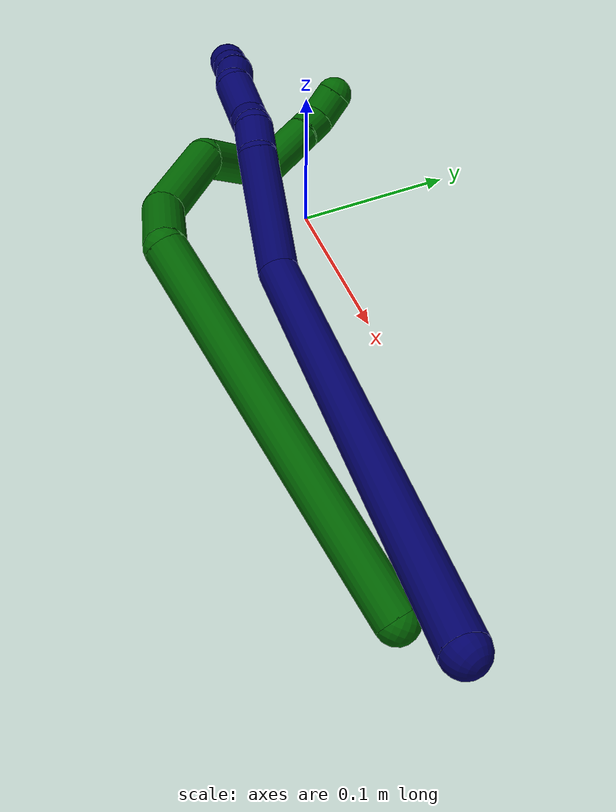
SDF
<sdf version="1.7">
 <world name="default">
  <model name="photoneo_s_sensor">
   <static>1</static>
   <pose>0 0 2 1.57079 1.57079 3.14159</pose>
   <link name="link">
    <inertial><mass>0.1</mass></inertial>
    <sensor name="sensor" type="depth">
     <update_rate>30</update_rate>
     <camera>
      <horizontal_fov>1.22</horizontal_fov>
      <image><width>1920</width><height>1200</height><format>B8G8R8</format></image>
      <clip><near>0.1</near><far>4</far></clip>
      <depth_camera><output>points</output></depth_camera>
     </camera>
     <plugin name="camera_plugin" filename="libgazebo_ros_depth_camera.so">
      <baseline>0.2</baseline>
      <alwaysOn>1</alwaysOn>
      <updateRate>0.0</updateRate>
      <cameraName>camera_ir</cameraName>
      <imageTopicName>/camera/color/image_raw</imageTopicName>
      <cameraInfoTopicName>/camera/color/camera_info</cameraInfoTopicName>
      <depthImageTopicName>/camera/depth/image_raw</depthImageTopicName>
      <depthImageCameraInfoTopicName>/camera/depth/camera_info</depthImageCameraInfoTopicName>
      <pointCloudTopicName>/camera/depth/points</pointCloudTopicName>
      <frameName>fr_optical</frameName>
      <pointCloudCutoff>0.1</pointCloudCutoff>
      <pointCloudCutoffMax>2.0</pointCloudCutoffMax>
      <distortionK1>0</distortionK1>
      <distortionK2>0</distortionK2>
      <distortionK3>0</distortionK3>
      <distortionT1>0</distortionT1>
      <distortionT2>0</distortionT2>
      <CxPrime>0</CxPrime>
      <Cx>0</Cx>
      <Cy>0</Cy>
      <focalLength>0</focalLength>
      <hackBaseline>0</hackBaseline>
     </plugin>
    </sensor>
   </link>
  </model>
  <model name="bin">
   <static>1</static>
   <link name="bottom">
    <collision name="collision-bottom">
     <pose>0 0 -0.01 0 -0 0</pose>
     <geometry><box><size>0.8 0.6 0.02</size></box></geometry>
     <surface>
      <friction><ode><mu>100</mu><mu2>100</mu2></ode></friction>
      <contact><collide_bitmask>65535</collide_bitmask></contact>
     </surface>
    </collision>
   </link>
   <link name="west_wall">
    <collision name="collision-west_wall">
     <pose>-0.41 0 0.1 0 -0 0</pose>
     <geometry><box><size>0.02 0.6 0.2</size></box></geometry>
     <surface>
      <friction><ode><mu>100</mu><mu2>100</mu2></ode></friction>
      <contact><collide_bitmask>65535</collide_bitmask></contact>
     </surface>
    </collision>
   </link>
   <link name="east_wall">
    <collision name="collision-east_wall">
     <pose>0.41 0 0.1 0 -0 0</pose>
     <geometry><box><size>0.02 0.6 0.2</size></box></geometry>
     <surface>
      <friction><ode><mu>100</mu><mu2>100</mu2></ode></friction>
      <contact><collide_bitmask>65535</collide_bitmask></contact>
     </surface>
    </collision>
   </link>
   <link name="south_wall">
    <collision name="collision-south_wall">
     <pose>0 -0.31 0.1 0 -0 0</pose>
     <geometry><box><size>0.8 0.02 0.2</size></box></geometry>
     <surface>
      <friction><ode><mu>100</mu><mu2>100</mu2></ode></friction>
      <contact><collide_bitmask>65535</collide_bitmask></contact>
     </surface>
    </collision>
   </link>
   <link name="north_wall">
    <collision name="collision-north_wall">
     <pose>0 0.31 0.1 0 -0 0</pose>
     <geometry><box><size>0.8 0.02 0.2</size></box></geometry>
     <surface>
      <friction><ode><mu>100</mu><mu2>100</mu2></ode></friction>
      <contact><collide_bitmask>65535</collide_bitmask></contact>
     </surface>
    </collision>
   </link>
  </model>
  <model name="6">
   <static>0</static>
   <link name="6">
    <collision name="collision-cylinder-e_1_1_4">
     <pose>-0.072007 -0.069766 0.060247 0.858481 -0.663152 -0.312591</pose>
     <geometry><cylinder><radius>0.0125</radius><length>0.233941</length></cylinder></geometry>
     <surface>
      <friction><ode><mu>1.16</mu><mu2>1.16</mu2><slip1>0</slip1><slip2>0</slip2></ode></friction>
      <contact><ode><kp>1e+06</kp><kd>1</kd><max_vel>0</max_vel><min_depth>0.001</min_depth></ode></contact>
     </surface>
    </collision>
    <visual name="visual-cylinder-e_1_1_4">
     <pose>-0.072007 -0.069766 0.060247 0.858481 -0.663152 -0.312591</pose>
     <geometry><cylinder><radius>0.0125</radius><length>0.233941</length></cylinder></geometry>
     <material><ambient>0 0.392157 0.003922 1</ambient></material>
    </visual>
    <collision name="collision-cylinder-e_2_4_5">
     <pose>-0.166843 -0.137689 0.130057 -0.190392 -1.16757 0.125986</pose>
     <geometry><cylinder><radius>0.0125</radius><length>0.049637</length></cylinder></geometry>
     <surface>
      <friction><ode><mu>1.16</mu><mu2>1.16</mu2><slip1>0</slip1><slip2>0</slip2></ode></friction>
      <contact><ode><kp>1e+06</kp><kd>1</kd><max_vel>0</max_vel><min_depth>0.001</min_depth></ode></contact>
     </surface>
    </collision>
    <visual name="visual-cylinder-e_2_4_5">
     <pose>-0.166843 -0.137689 0.130057 -0.190392 -1.16757 0.125986</pose>
     <geometry><cylinder><radius>0.0125</radius><length>0.049637</length></cylinder></geometry>
     <material><ambient>0 0.392157 0.003922 1</ambient></material>
    </visual>
    <collision name="collision-cylinder-e_3_5_6">
     <pose>-0.208426 -0.124931 0.160308 -0.485455 -0.675835 0.173581</pose>
     <geometry><cylinder><radius>0.0125</radius><length>0.059963</length></cylinder></geometry>
     <surface>
      <friction><ode><mu>1.16</mu><mu2>1.16</mu2><slip1>0</slip1><slip2>0</slip2></ode></friction>
      <contact><ode><kp>1e+06</kp><kd>1</kd><max_vel>0</max_vel><min_depth>0.001</min_depth></ode></contact>
     </surface>
    </collision>
    <visual name="visual-cylinder-e_3_5_6">
     <pose>-0.208426 -0.124931 0.160308 -0.485455 -0.675835 0.173581</pose>
     <geometry><cylinder><radius>0.0125</radius><length>0.059963</length></cylinder></geometry>
     <material><ambient>0 0.392157 0.003922 1</ambient></material>
    </visual>
    <collision name="collision-cylinder-e_4_6_7">
     <pose>-0.248306 -0.086424 0.18805 -1.32052 -0.638185 0.502268</pose>
     <geometry><cylinder><radius>0.0125</radius><length>0.070919</length></cylinder></geometry>
     <surface>
      <friction><ode><mu>1.16</mu><mu2>1.16</mu2><slip1>0</slip1><slip2>0</slip2></ode></friction>
      <contact><ode><kp>1e+06</kp><kd>1</kd><max_vel>0</max_vel><min_depth>0.001</min_depth></ode></contact>
     </surface>
    </collision>
    <visual name="visual-cylinder-e_4_6_7">
     <pose>-0.248306 -0.086424 0.18805 -1.32052 -0.638185 0.502268</pose>
     <geometry><cylinder><radius>0.0125</radius><length>0.070919</length></cylinder></geometry>
     <material><ambient>0 0.392157 0.003922 1</ambient></material>
    </visual>
    <collision name="collision-cylinder-e_5_7_8">
     <pose>-0.277113 -0.048688 0.21274 -0.5219 -0.361077 0.097406</pose>
     <geometry><cylinder><radius>0.0125</radius><length>0.043494</length></cylinder></geometry>
     <surface>
      <friction><ode><mu>1.16</mu><mu2>1.16</mu2><slip1>0</slip1><slip2>0</slip2></ode></friction>
      <contact><ode><kp>1e+06</kp><kd>1</kd><max_vel>0</max_vel><min_depth>0.001</min_depth></ode></contact>
     </surface>
    </collision>
    <visual name="visual-cylinder-e_5_7_8">
     <pose>-0.277113 -0.048688 0.21274 -0.5219 -0.361077 0.097406</pose>
     <geometry><cylinder><radius>0.0125</radius><length>0.043494</length></cylinder></geometry>
     <material><ambient>0 0.392157 0.003922 1</ambient></material>
    </visual>
    <collision name="collision-cylinder-e_6_8_9">
     <pose>-0.289659 -0.033529 0.238174 -0.57175 -0.48308 0.144565</pose>
     <geometry><cylinder><radius>0.0125</radius><length>0.02094</length></cylinder></geometry>
     <surface>
      <friction><ode><mu>1.16</mu><mu2>1.16</mu2><slip1>0</slip1><slip2>0</slip2></ode></friction>
      <contact><ode><kp>1e+06</kp><kd>1</kd><max_vel>0</max_vel><min_depth>0.001</min_depth></ode></contact>
     </surface>
    </collision>
    <visual name="visual-cylinder-e_6_8_9">
     <pose>-0.289659 -0.033529 0.238174 -0.57175 -0.48308 0.144565</pose>
     <geometry><cylinder><radius>0.0125</radius><length>0.02094</length></cylinder></geometry>
     <material><ambient>0 0.392157 0.003922 1</ambient></material>
    </visual>
    <collision name="collision-cylinder-e_7_9_2">
     <pose>-0.29401 -0.026563 0.25633 -0.185919 0.048548 -0.004527</pose>
     <geometry><cylinder><radius>0.0125</radius><length>0.021106</length></cylinder></geometry>
     <surface>
      <friction><ode><mu>1.16</mu><mu2>1.16</mu2><slip1>0</slip1><slip2>0</slip2></ode></friction>
      <contact><ode><kp>1e+06</kp><kd>1</kd><max_vel>0</max_vel><min_depth>0.001</min_depth></ode></contact>
     </surface>
    </collision>
    <visual name="visual-cylinder-e_7_9_2">
     <pose>-0.29401 -0.026563 0.25633 -0.185919 0.048548 -0.004527</pose>
     <geometry><cylinder><radius>0.0125</radius><length>0.021106</length></cylinder></geometry>
     <material><ambient>0 0.392157 0.003922 1</ambient></material>
    </visual>
    <collision name="collision-sphere-2">
     <pose>-0.293498 -0.024615 0.266689 0 -0 0</pose>
     <geometry><sphere><radius>0.0125</radius></sphere></geometry>
     <surface>
      <friction><ode><mu>1.16</mu><mu2>1.16</mu2><slip1>0</slip1><slip2>0</slip2></ode></friction>
      <contact><ode><kp>1e+06</kp><kd>1</kd><max_vel>0</max_vel><min_depth>0.001</min_depth></ode></contact>
     </surface>
    </collision>
    <visual name="visual-sphere-2">
     <pose>-0.293498 -0.024615 0.266689 0 -0 0</pose>
     <geometry><sphere><radius>0.0125</radius></sphere></geometry>
     <material><ambient>0 0.392157 0.003922 1</ambient></material>
    </visual>
    <collision name="collision-sphere-9">
     <pose>-0.294523 -0.028512 0.245971 0 -0 0</pose>
     <geometry><sphere><radius>0.0125</radius></sphere></geometry>
     <surface>
      <friction><ode><mu>1.16</mu><mu2>1.16</mu2><slip1>0</slip1><slip2>0</slip2></ode></friction>
      <contact><ode><kp>1e+06</kp><kd>1</kd><max_vel>0</max_vel><min_depth>0.001</min_depth></ode></contact>
     </surface>
    </collision>
    <visual name="visual-sphere-9">
     <pose>-0.294523 -0.028512 0.245971 0 -0 0</pose>
     <geometry><sphere><radius>0.0125</radius></sphere></geometry>
     <material><ambient>0 0.392157 0.003922 1</ambient></material>
    </visual>
    <collision name="collision-sphere-4">
     <pose>-0.144015 -0.139532 0.120494 0 -0 0</pose>
     <geometry><sphere><radius>0.0125</radius></sphere></geometry>
     <surface>
      <friction><ode><mu>1.16</mu><mu2>1.16</mu2><slip1>0</slip1><slip2>0</slip2></ode></friction>
      <contact><ode><kp>1e+06</kp><kd>1</kd><max_vel>0</max_vel><min_depth>0.001</min_depth></ode></contact>
     </surface>
    </collision>
    <visual name="visual-sphere-4">
     <pose>-0.144015 -0.139532 0.120494 0 -0 0</pose>
     <geometry><sphere><radius>0.0125</radius></sphere></geometry>
     <material><ambient>0 0.392157 0.003922 1</ambient></material>
    </visual>
    <collision name="collision-sphere-1">
     <geometry><sphere><radius>0.0125</radius></sphere></geometry>
     <surface>
      <friction><ode><mu>1.16</mu><mu2>1.16</mu2><slip1>0</slip1><slip2>0</slip2></ode></friction>
      <contact><ode><kp>1e+06</kp><kd>1</kd><max_vel>0</max_vel><min_depth>0.001</min_depth></ode></contact>
     </surface>
    </collision>
    <visual name="visual-sphere-1">
     <geometry><sphere><radius>0.0125</radius></sphere></geometry>
     <material><ambient>0 0.392157 0.003922 1</ambient></material>
    </visual>
    <collision name="collision-sphere-8">
     <pose>-0.284796 -0.038546 0.230377 0 -0 0</pose>
     <geometry><sphere><radius>0.0125</radius></sphere></geometry>
     <surface>
      <friction><ode><mu>1.16</mu><mu2>1.16</mu2><slip1>0</slip1><slip2>0</slip2></ode></friction>
      <contact><ode><kp>1e+06</kp><kd>1</kd><max_vel>0</max_vel><min_depth>0.001</min_depth></ode></contact>
     </surface>
    </collision>
    <visual name="visual-sphere-8">
     <pose>-0.284796 -0.038546 0.230377 0 -0 0</pose>
     <geometry><sphere><radius>0.0125</radius></sphere></geometry>
     <material><ambient>0 0.392157 0.003922 1</ambient></material>
    </visual>
    <collision name="collision-sphere-5">
     <pose>-0.189671 -0.135846 0.139619 0 -0 0</pose>
     <geometry><sphere><radius>0.0125</radius></sphere></geometry>
     <surface>
      <friction><ode><mu>1.16</mu><mu2>1.16</mu2><slip1>0</slip1><slip2>0</slip2></ode></friction>
      <contact><ode><kp>1e+06</kp><kd>1</kd><max_vel>0</max_vel><min_depth>0.001</min_depth></ode></contact>
     </surface>
    </collision>
    <visual name="visual-sphere-5">
     <pose>-0.189671 -0.135846 0.139619 0 -0 0</pose>
     <geometry><sphere><radius>0.0125</radius></sphere></geometry>
     <material><ambient>0 0.392157 0.003922 1</ambient></material>
    </visual>
    <collision name="collision-sphere-6">
     <pose>-0.227181 -0.114017 0.180997 0 -0 0</pose>
     <geometry><sphere><radius>0.0125</radius></sphere></geometry>
     <surface>
      <friction><ode><mu>1.16</mu><mu2>1.16</mu2><slip1>0</slip1><slip2>0</slip2></ode></friction>
      <contact><ode><kp>1e+06</kp><kd>1</kd><max_vel>0</max_vel><min_depth>0.001</min_depth></ode></contact>
     </surface>
    </collision>
    <visual name="visual-sphere-6">
     <pose>-0.227181 -0.114017 0.180997 0 -0 0</pose>
     <geometry><sphere><radius>0.0125</radius></sphere></geometry>
     <material><ambient>0 0.392157 0.003922 1</ambient></material>
    </visual>
    <collision name="collision-sphere-7">
     <pose>-0.26943 -0.058831 0.195104 0 -0 0</pose>
     <geometry><sphere><radius>0.0125</radius></sphere></geometry>
     <surface>
      <friction><ode><mu>1.16</mu><mu2>1.16</mu2><slip1>0</slip1><slip2>0</slip2></ode></friction>
      <contact><ode><kp>1e+06</kp><kd>1</kd><max_vel>0</max_vel><min_depth>0.001</min_depth></ode></contact>
     </surface>
    </collision>
    <visual name="visual-sphere-7">
     <pose>-0.26943 -0.058831 0.195104 0 -0 0</pose>
     <geometry><sphere><radius>0.0125</radius></sphere></geometry>
     <material><ambient>0 0.392157 0.003922 1</ambient></material>
    </visual>
    <inertial>
     <pose>-0.159116 -0.080313 0.126298 0 -0 0</pose>
     <mass>0.5</mass>
     <inertia>
      <ixx>0.000594</ixx>
      <ixy>0</ixy>
      <ixz>0</ixz>
      <iyy>0.000635</iyy>
      <iyz>0</iyz>
      <izz>0.001333</izz>
     </inertia>
    </inertial>
   </link>
   <pose>0.28844 -0.071101 0.012407 -0.739355 -0.601581 0.08893</pose>
  </model>
  <model name="7">
   <static>0</static>
   <link name="7">
    <collision name="collision-cylinder-e_1_1_4">
     <pose>-0.029402 0.025523 -0.135606 -2.95555 -0.20994 1.69214</pose>
     <geometry><cylinder><radius>0.0125</radius><length>0.282169</length></cylinder></geometry>
     <surface>
      <friction><ode><mu>1.16</mu><mu2>1.16</mu2><slip1>0</slip1><slip2>0</slip2></ode></friction>
      <contact><ode><kp>1e+06</kp><kd>1</kd><max_vel>0</max_vel><min_depth>0.001</min_depth></ode></contact>
     </surface>
    </collision>
    <visual name="visual-cylinder-e_1_1_4">
     <pose>-0.029402 0.025523 -0.135606 -2.95555 -0.20994 1.69214</pose>
     <geometry><cylinder><radius>0.0125</radius><length>0.282169</length></cylinder></geometry>
     <material><ambient>0.003922 0 0.403922 1</ambient></material>
    </visual>
    <collision name="collision-cylinder-e_2_4_5">
     <pose>-0.0827 0.041674 -0.301231 2.83895 -0.649749 -2.29133</pose>
     <geometry><cylinder><radius>0.0125</radius><length>0.078995</length></cylinder></geometry>
     <surface>
      <friction><ode><mu>1.16</mu><mu2>1.16</mu2><slip1>0</slip1><slip2>0</slip2></ode></friction>
      <contact><ode><kp>1e+06</kp><kd>1</kd><max_vel>0</max_vel><min_depth>0.001</min_depth></ode></contact>
     </surface>
    </collision>
    <visual name="visual-cylinder-e_2_4_5">
     <pose>-0.0827 0.041674 -0.301231 2.83895 -0.649749 -2.29133</pose>
     <geometry><cylinder><radius>0.0125</radius><length>0.078995</length></cylinder></geometry>
     <material><ambient>0.003922 0 0.403922 1</ambient></material>
    </visual>
    <collision name="collision-cylinder-e_3_5_6">
     <pose>-0.11215 0.03267 -0.340381 -3.10115 -0.546228 2.99743</pose>
     <geometry><cylinder><radius>0.0125</radius><length>0.021387</length></cylinder></geometry>
     <surface>
      <friction><ode><mu>1.16</mu><mu2>1.16</mu2><slip1>0</slip1><slip2>0</slip2></ode></friction>
      <contact><ode><kp>1e+06</kp><kd>1</kd><max_vel>0</max_vel><min_depth>0.001</min_depth></ode></contact>
     </surface>
    </collision>
    <visual name="visual-cylinder-e_3_5_6">
     <pose>-0.11215 0.03267 -0.340381 -3.10115 -0.546228 2.99743</pose>
     <geometry><cylinder><radius>0.0125</radius><length>0.021387</length></cylinder></geometry>
     <material><ambient>0.003922 0 0.403922 1</ambient></material>
    </visual>
    <collision name="collision-cylinder-e_4_6_7">
     <pose>-0.118922 0.038273 -0.359798 -2.67099 -0.105061 0.431795</pose>
     <geometry><cylinder><radius>0.0125</radius><length>0.023211</length></cylinder></geometry>
     <surface>
      <friction><ode><mu>1.16</mu><mu2>1.16</mu2><slip1>0</slip1><slip2>0</slip2></ode></friction>
      <contact><ode><kp>1e+06</kp><kd>1</kd><max_vel>0</max_vel><min_depth>0.001</min_depth></ode></contact>
     </surface>
    </collision>
    <visual name="visual-cylinder-e_4_6_7">
     <pose>-0.118922 0.038273 -0.359798 -2.67099 -0.105061 0.431795</pose>
     <geometry><cylinder><radius>0.0125</radius><length>0.023211</length></cylinder></geometry>
     <material><ambient>0.003922 0 0.403922 1</ambient></material>
    </visual>
    <collision name="collision-cylinder-e_5_7_8">
     <pose>-0.126118 0.04211 -0.385281 3.04999 -0.373403 -2.66553</pose>
     <geometry><cylinder><radius>0.0125</radius><length>0.032779</length></cylinder></geometry>
     <surface>
      <friction><ode><mu>1.16</mu><mu2>1.16</mu2><slip1>0</slip1><slip2>0</slip2></ode></friction>
      <contact><ode><kp>1e+06</kp><kd>1</kd><max_vel>0</max_vel><min_depth>0.001</min_depth></ode></contact>
     </surface>
    </collision>
    <visual name="visual-cylinder-e_5_7_8">
     <pose>-0.126118 0.04211 -0.385281 3.04999 -0.373403 -2.66553</pose>
     <geometry><cylinder><radius>0.0125</radius><length>0.032779</length></cylinder></geometry>
     <material><ambient>0.003922 0 0.403922 1</ambient></material>
    </visual>
    <collision name="collision-cylinder-e_6_8_9">
     <pose>-0.135727 0.044988 -0.409554 -2.70149 -0.347192 1.32983</pose>
     <geometry><cylinder><radius>0.0125</radius><length>0.021339</length></cylinder></geometry>
     <surface>
      <friction><ode><mu>1.16</mu><mu2>1.16</mu2><slip1>0</slip1><slip2>0</slip2></ode></friction>
      <contact><ode><kp>1e+06</kp><kd>1</kd><max_vel>0</max_vel><min_depth>0.001</min_depth></ode></contact>
     </surface>
    </collision>
    <visual name="visual-cylinder-e_6_8_9">
     <pose>-0.135727 0.044988 -0.409554 -2.70149 -0.347192 1.32983</pose>
     <geometry><cylinder><radius>0.0125</radius><length>0.021339</length></cylinder></geometry>
     <material><ambient>0.003922 0 0.403922 1</ambient></material>
    </visual>
    <collision name="collision-cylinder-e_7_9_10">
     <pose>-0.140175 0.053697 -0.427617 -2.68317 -0.081405 0.345623</pose>
     <geometry><cylinder><radius>0.0125</radius><length>0.020108</length></cylinder></geometry>
     <surface>
      <friction><ode><mu>1.16</mu><mu2>1.16</mu2><slip1>0</slip1><slip2>0</slip2></ode></friction>
      <contact><ode><kp>1e+06</kp><kd>1</kd><max_vel>0</max_vel><min_depth>0.001</min_depth></ode></contact>
     </surface>
    </collision>
    <visual name="visual-cylinder-e_7_9_10">
     <pose>-0.140175 0.053697 -0.427617 -2.68317 -0.081405 0.345623</pose>
     <geometry><cylinder><radius>0.0125</radius><length>0.020108</length></cylinder></geometry>
     <material><ambient>0.003922 0 0.403922 1</ambient></material>
    </visual>
    <collision name="collision-cylinder-e_8_10_2">
     <pose>-0.142283 0.062454 -0.445535 -2.69088 -0.129319 0.55054</pose>
     <geometry><cylinder><radius>0.0125</radius><length>0.020012</length></cylinder></geometry>
     <surface>
      <friction><ode><mu>1.16</mu><mu2>1.16</mu2><slip1>0</slip1><slip2>0</slip2></ode></friction>
      <contact><ode><kp>1e+06</kp><kd>1</kd><max_vel>0</max_vel><min_depth>0.001</min_depth></ode></contact>
     </surface>
    </collision>
    <visual name="visual-cylinder-e_8_10_2">
     <pose>-0.142283 0.062454 -0.445535 -2.69088 -0.129319 0.55054</pose>
     <geometry><cylinder><radius>0.0125</radius><length>0.020012</length></cylinder></geometry>
     <material><ambient>0.003922 0 0.403922 1</ambient></material>
    </visual>
    <collision name="collision-sphere-2">
     <pose>-0.143573 0.066776 -0.454467 0 -0 0</pose>
     <geometry><sphere><radius>0.0125</radius></sphere></geometry>
     <surface>
      <friction><ode><mu>1.16</mu><mu2>1.16</mu2><slip1>0</slip1><slip2>0</slip2></ode></friction>
      <contact><ode><kp>1e+06</kp><kd>1</kd><max_vel>0</max_vel><min_depth>0.001</min_depth></ode></contact>
     </surface>
    </collision>
    <visual name="visual-sphere-2">
     <pose>-0.143573 0.066776 -0.454467 0 -0 0</pose>
     <geometry><sphere><radius>0.0125</radius></sphere></geometry>
     <material><ambient>0.003922 0 0.403922 1</ambient></material>
    </visual>
    <collision name="collision-sphere-10">
     <pose>-0.140992 0.058131 -0.436603 0 -0 0</pose>
     <geometry><sphere><radius>0.0125</radius></sphere></geometry>
     <surface>
      <friction><ode><mu>1.16</mu><mu2>1.16</mu2><slip1>0</slip1><slip2>0</slip2></ode></friction>
      <contact><ode><kp>1e+06</kp><kd>1</kd><max_vel>0</max_vel><min_depth>0.001</min_depth></ode></contact>
     </surface>
    </collision>
    <visual name="visual-sphere-10">
     <pose>-0.140992 0.058131 -0.436603 0 -0 0</pose>
     <geometry><sphere><radius>0.0125</radius></sphere></geometry>
     <material><ambient>0.003922 0 0.403922 1</ambient></material>
    </visual>
    <collision name="collision-sphere-9">
     <pose>-0.139357 0.049262 -0.418631 0 -0 0</pose>
     <geometry><sphere><radius>0.0125</radius></sphere></geometry>
     <surface>
      <friction><ode><mu>1.16</mu><mu2>1.16</mu2><slip1>0</slip1><slip2>0</slip2></ode></friction>
      <contact><ode><kp>1e+06</kp><kd>1</kd><max_vel>0</max_vel><min_depth>0.001</min_depth></ode></contact>
     </surface>
    </collision>
    <visual name="visual-sphere-9">
     <pose>-0.139357 0.049262 -0.418631 0 -0 0</pose>
     <geometry><sphere><radius>0.0125</radius></sphere></geometry>
     <material><ambient>0.003922 0 0.403922 1</ambient></material>
    </visual>
    <collision name="collision-sphere-4">
     <pose>-0.058804 0.051047 -0.271211 0 -0 0</pose>
     <geometry><sphere><radius>0.0125</radius></sphere></geometry>
     <surface>
      <friction><ode><mu>1.16</mu><mu2>1.16</mu2><slip1>0</slip1><slip2>0</slip2></ode></friction>
      <contact><ode><kp>1e+06</kp><kd>1</kd><max_vel>0</max_vel><min_depth>0.001</min_depth></ode></contact>
     </surface>
    </collision>
    <visual name="visual-sphere-4">
     <pose>-0.058804 0.051047 -0.271211 0 -0 0</pose>
     <geometry><sphere><radius>0.0125</radius></sphere></geometry>
     <material><ambient>0.003922 0 0.403922 1</ambient></material>
    </visual>
    <collision name="collision-sphere-1">
     <geometry><sphere><radius>0.0125</radius></sphere></geometry>
     <surface>
      <friction><ode><mu>1.16</mu><mu2>1.16</mu2><slip1>0</slip1><slip2>0</slip2></ode></friction>
      <contact><ode><kp>1e+06</kp><kd>1</kd><max_vel>0</max_vel><min_depth>0.001</min_depth></ode></contact>
     </surface>
    </collision>
    <visual name="visual-sphere-1">
     <geometry><sphere><radius>0.0125</radius></sphere></geometry>
     <material><ambient>0.003922 0 0.403922 1</ambient></material>
    </visual>
    <collision name="collision-sphere-8">
     <pose>-0.132096 0.040714 -0.400477 0 -0 0</pose>
     <geometry><sphere><radius>0.0125</radius></sphere></geometry>
     <surface>
      <friction><ode><mu>1.16</mu><mu2>1.16</mu2><slip1>0</slip1><slip2>0</slip2></ode></friction>
      <contact><ode><kp>1e+06</kp><kd>1</kd><max_vel>0</max_vel><min_depth>0.001</min_depth></ode></contact>
     </surface>
    </collision>
    <visual name="visual-sphere-8">
     <pose>-0.132096 0.040714 -0.400477 0 -0 0</pose>
     <geometry><sphere><radius>0.0125</radius></sphere></geometry>
     <material><ambient>0.003922 0 0.403922 1</ambient></material>
    </visual>
    <collision name="collision-sphere-5">
     <pose>-0.106595 0.032301 -0.331251 0 -0 0</pose>
     <geometry><sphere><radius>0.0125</radius></sphere></geometry>
     <surface>
      <friction><ode><mu>1.16</mu><mu2>1.16</mu2><slip1>0</slip1><slip2>0</slip2></ode></friction>
      <contact><ode><kp>1e+06</kp><kd>1</kd><max_vel>0</max_vel><min_depth>0.001</min_depth></ode></contact>
     </surface>
    </collision>
    <visual name="visual-sphere-5">
     <pose>-0.106595 0.032301 -0.331251 0 -0 0</pose>
     <geometry><sphere><radius>0.0125</radius></sphere></geometry>
     <material><ambient>0.003922 0 0.403922 1</ambient></material>
    </visual>
    <collision name="collision-sphere-6">
     <pose>-0.117705 0.033039 -0.349511 0 -0 0</pose>
     <geometry><sphere><radius>0.0125</radius></sphere></geometry>
     <surface>
      <friction><ode><mu>1.16</mu><mu2>1.16</mu2><slip1>0</slip1><slip2>0</slip2></ode></friction>
      <contact><ode><kp>1e+06</kp><kd>1</kd><max_vel>0</max_vel><min_depth>0.001</min_depth></ode></contact>
     </surface>
    </collision>
    <visual name="visual-sphere-6">
     <pose>-0.117705 0.033039 -0.349511 0 -0 0</pose>
     <geometry><sphere><radius>0.0125</radius></sphere></geometry>
     <material><ambient>0.003922 0 0.403922 1</ambient></material>
    </visual>
    <collision name="collision-sphere-7">
     <pose>-0.120139 0.043506 -0.370085 0 -0 0</pose>
     <geometry><sphere><radius>0.0125</radius></sphere></geometry>
     <surface>
      <friction><ode><mu>1.16</mu><mu2>1.16</mu2><slip1>0</slip1><slip2>0</slip2></ode></friction>
      <contact><ode><kp>1e+06</kp><kd>1</kd><max_vel>0</max_vel><min_depth>0.001</min_depth></ode></contact>
     </surface>
    </collision>
    <visual name="visual-sphere-7">
     <pose>-0.120139 0.043506 -0.370085 0 -0 0</pose>
     <geometry><sphere><radius>0.0125</radius></sphere></geometry>
     <material><ambient>0.003922 0 0.403922 1</ambient></material>
    </visual>
    <inertial>
     <pose>-0.065369 0.033502 -0.233147 0 -0 0</pose>
     <mass>0.5</mass>
     <inertia><ixx>0.001546</ixx><ixy>0</ixy><ixz>0</ixz><iyy>0.00214</iyy><iyz>0</iyz><izz>5.4e-05</izz></inertia>
    </inertial>
   </link>
   <pose>0.337684 -0.067011 0.074767 -1.37733 0.622478 -1.2594</pose>
  </model>
 </world>
</sdf>
